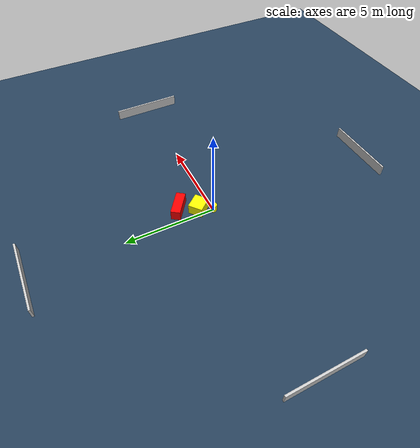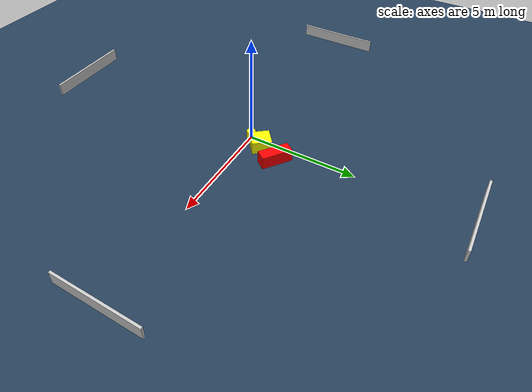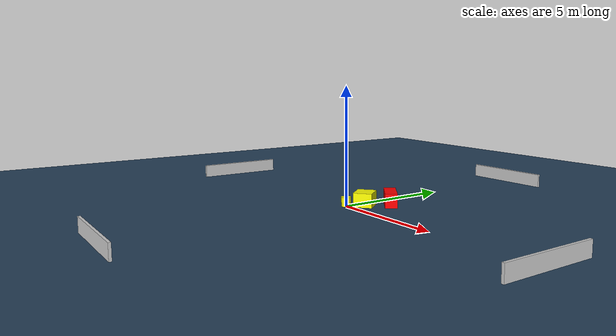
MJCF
<?xml version="1.0" ?>
<mujoco model="generated_environment">
  <option timestep="0.01" integrator="RK4" cone="elliptic"/>
  <default>
    <geom density="1"/>
  </default>
  <asset>
    <texture builtin="gradient" height="3072" name="skybox" rgb1="0.3 0.5 0.7" rgb2="0 0 0" type="skybox" width="512"/>
    <texture builtin="checker" height="300" name="groundplane" rgb1="0.2 0.3 0.4" rgb2="0.1 0.2 0.3" type="2d" width="300"/>
    <material name="groundplane" reflectance="0.2" texrepeat="5 5" texture="groundplane"/>
  </asset>
  <worldbody>
    <light dir="0 0 -1" directional="true" pos="0 0 1.5"/>
    <geom condim="3" friction="0.5 0.005 0.001" material="groundplane" name="floor" pos="0 0 0" size="0 0 0.05" type="plane"/>
    <body name="walls">
      <geom name="wall_1" condim="4" pos="-10.0 0.0 0.3" rgba="0.800000011920929 0.800000011920929 0.800000011920929 1.0" size="0.05 2.0 0.3" type="box"/>
      <geom name="wall_2" condim="4" pos="10.0 0.0 0.3" rgba="0.800000011920929 0.800000011920929 0.800000011920929 1.0" size="0.05 2.0 0.3" type="box"/>
      <geom name="wall_3" condim="4" pos="0.0 -10.0 0.3" rgba="0.800000011920929 0.800000011920929 0.800000011920929 1.0" size="2.0 0.05 0.3" type="box"/>
      <geom name="wall_4" condim="4" pos="0.0 10.0 0.3" rgba="0.800000011920929 0.800000011920929 0.800000011920929 1.0" size="2.0 0.05 0.3" type="box"/>
    </body>
    <body name="robot">
      <joint name="joint_x" type="slide" pos="0 0 0" axis="1 0 0"/>
      <joint name="joint_y" type="slide" pos="0 0 0" axis="0 1 0"/>
      <geom name="robot" type="cylinder" pos="0.0 0.0 0.2" size="0.2 0.2 0.0" mass="5.0" friction="1.0 0.005 0.0001" condim="4" rgba="1.0 1.0 0.0 1.0"/>
    </body>
    <body name="obstacle_1_movable">
      <geom name="obstacle_1_movable" condim="4" pos="0.3665572024700376 0.6989210803542306 0.3" euler="0 0 39.171131038394236" friction="0.0 0.005 0.001" rgba="1.0 1.0 0.0 1.0" size="0.39898972660939847 0.445900699215225 0.3" type="box" mass="0.1"/>
      <joint type="free"/>
    </body>
    <body name="obstacle_2_static">
      <geom name="obstacle_2_static" condim="4" pos="0.8382810178882326 1.6847570160308991 0.3" euler="0 0 233.82807250763258" friction="0.0 0.005 0.001" rgba="1.0 0.0 0.0 1.0" size="0.25701611494481025 0.7015603275795728 0.3" type="box"/>
    </body>
  </worldbody>
  <actuator>
    <motor name="actuator_x" joint="joint_x" gear="1" ctrlrange="-1 1"/>
    <motor name="actuator_y" joint="joint_y" gear="1" ctrlrange="-1 1"/>
  </actuator>
</mujoco>
